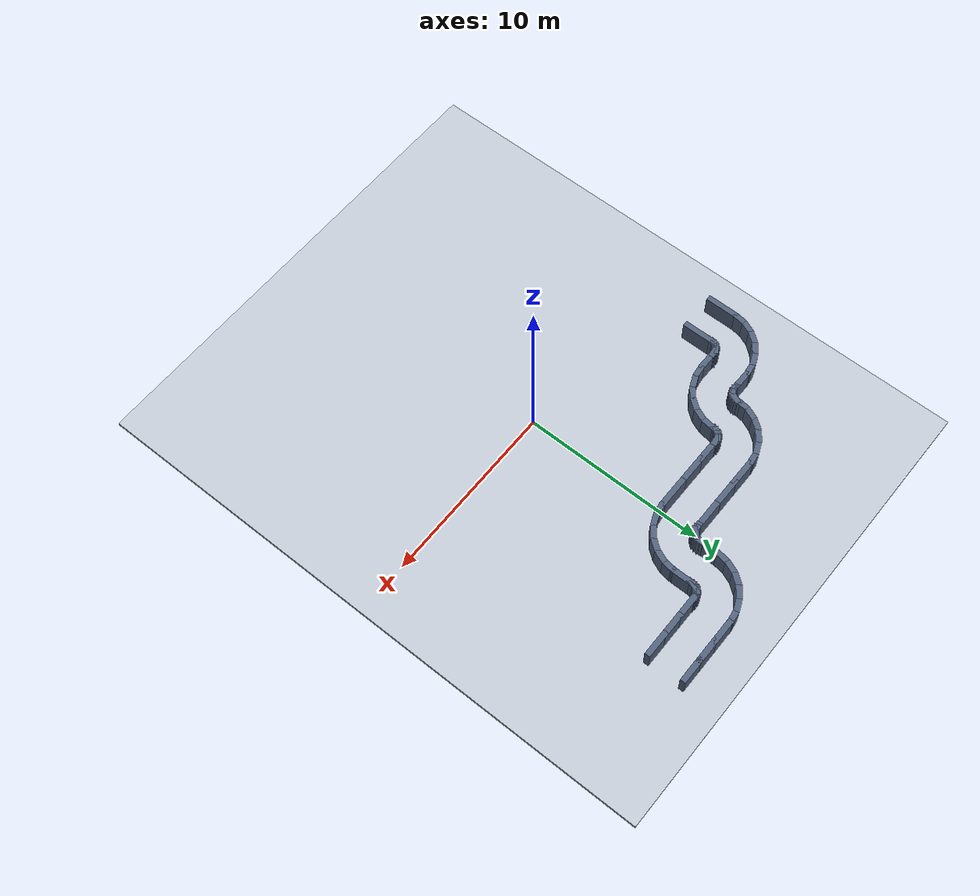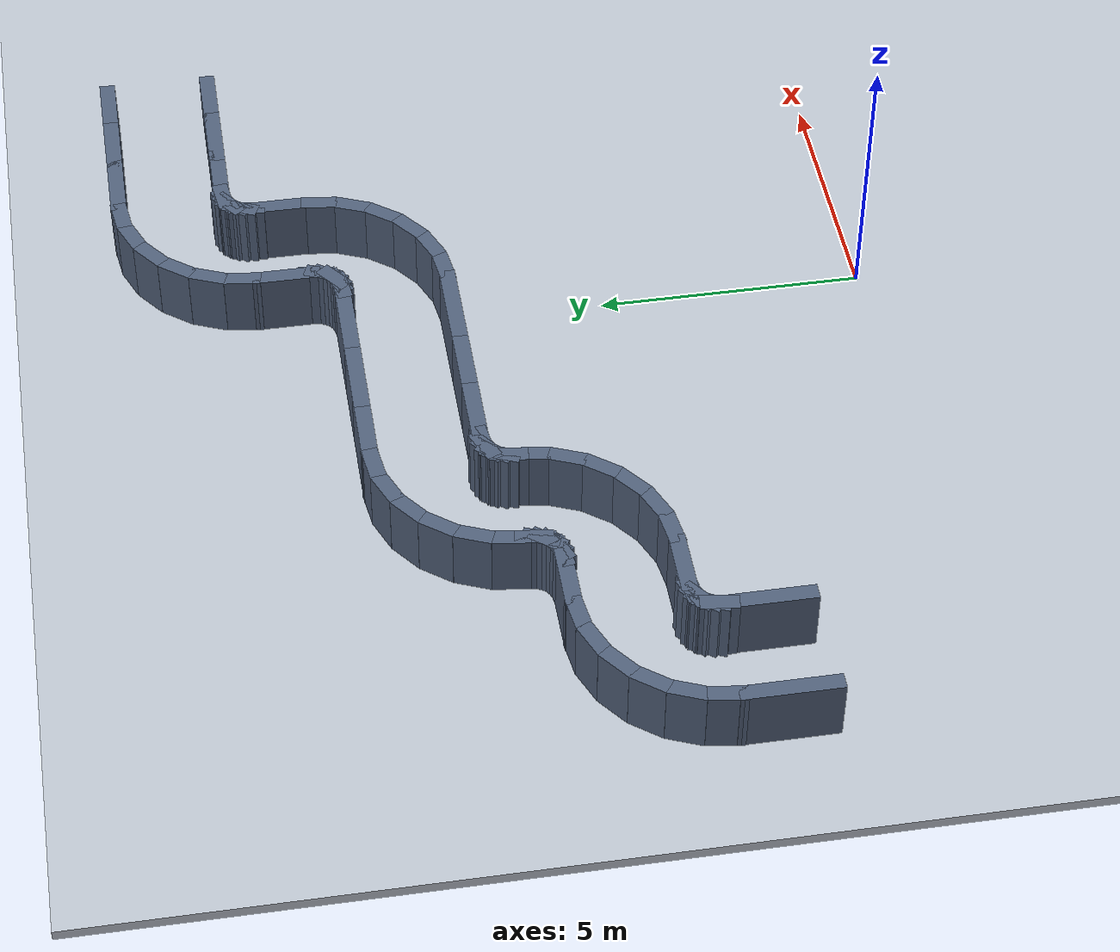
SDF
<sdf version="1.6">
 <world name="merged_maze">
  <model name="ground_plane">
   <static>true</static>
   <pose>0 0 -0.1 0 0 0</pose>
   <link name="link">
    <collision name="collision">
     <geometry><box><size>25.9198 32.2599 0.2</size></box></geometry>
     <surface><friction><ode><mu>1</mu><mu2>1</mu2></ode></friction></surface>
    </collision>
    <visual name="visual">
     <geometry><box><size>25.9198 32.2599 0.2</size></box></geometry>
     <material><ambient>0.75 0.78 0.82 1</ambient><diffuse>0.75 0.78 0.82 1</diffuse></material>
    </visual>
   </link>
  </model>
  <model name="maze_4_U">
   <static>true</static>
   <link name="w00">
    <pose>5.917 11.9701 0.6 0 0 3.1416</pose>
    <collision name="collision"><geometry><box><size>1.467 0.3 1.2</size></box></geometry></collision>
    <visual name="visual">
     <geometry><box><size>1.467 0.3 1.2</size></box></geometry>
     <material><ambient>0.32 0.38 0.48 1</ambient><diffuse>0.32 0.38 0.48 1</diffuse></material>
    </visual>
   </link>
   <link name="w01">
    <pose>5.917 13.9701 0.6 0 0 3.1416</pose>
    <collision name="collision"><geometry><box><size>1.467 0.3 1.2</size></box></geometry></collision>
    <visual name="visual">
     <geometry><box><size>1.467 0.3 1.2</size></box></geometry>
     <material><ambient>0.32 0.38 0.48 1</ambient><diffuse>0.32 0.38 0.48 1</diffuse></material>
    </visual>
   </link>
   <link name="w02">
    <pose>4.75 11.9701 0.6 0 0 3.1416</pose>
    <collision name="collision"><geometry><box><size>1.467 0.3 1.2</size></box></geometry></collision>
    <visual name="visual">
     <geometry><box><size>1.467 0.3 1.2</size></box></geometry>
     <material><ambient>0.32 0.38 0.48 1</ambient><diffuse>0.32 0.38 0.48 1</diffuse></material>
    </visual>
   </link>
   <link name="w03">
    <pose>4.75 13.9701 0.6 0 0 3.1416</pose>
    <collision name="collision"><geometry><box><size>1.467 0.3 1.2</size></box></geometry></collision>
    <visual name="visual">
     <geometry><box><size>1.467 0.3 1.2</size></box></geometry>
     <material><ambient>0.32 0.38 0.48 1</ambient><diffuse>0.32 0.38 0.48 1</diffuse></material>
    </visual>
   </link>
   <link name="w04">
    <pose>3.583 11.9701 0.6 0 0 3.1416</pose>
    <collision name="collision"><geometry><box><size>1.467 0.3 1.2</size></box></geometry></collision>
    <visual name="visual">
     <geometry><box><size>1.467 0.3 1.2</size></box></geometry>
     <material><ambient>0.32 0.38 0.48 1</ambient><diffuse>0.32 0.38 0.48 1</diffuse></material>
    </visual>
   </link>
   <link name="w05">
    <pose>3.583 13.9701 0.6 0 0 3.1416</pose>
    <collision name="collision"><geometry><box><size>1.467 0.3 1.2</size></box></geometry></collision>
    <visual name="visual">
     <geometry><box><size>1.467 0.3 1.2</size></box></geometry>
     <material><ambient>0.32 0.38 0.48 1</ambient><diffuse>0.32 0.38 0.48 1</diffuse></material>
    </visual>
   </link>
   <link name="w06">
    <pose>2.936 11.9531 0.6 0 0 3.2725</pose>
    <collision name="collision"><geometry><box><size>0.692 0.3 1.2</size></box></geometry></collision>
    <visual name="visual">
     <geometry><box><size>0.692 0.3 1.2</size></box></geometry>
     <material><ambient>0.32 0.38 0.48 1</ambient><diffuse>0.32 0.38 0.48 1</diffuse></material>
    </visual>
   </link>
   <link name="w07">
    <pose>2.675 13.9361 0.6 0 0 3.2725</pose>
    <collision name="collision"><geometry><box><size>0.692 0.3 1.2</size></box></geometry></collision>
    <visual name="visual">
     <geometry><box><size>0.692 0.3 1.2</size></box></geometry>
     <material><ambient>0.32 0.38 0.48 1</ambient><diffuse>0.32 0.38 0.48 1</diffuse></material>
    </visual>
   </link>
   <link name="w08">
    <pose>2.814 11.9201 0.6 0 0 3.5343</pose>
    <collision name="collision"><geometry><box><size>0.692 0.3 1.2</size></box></geometry></collision>
    <visual name="visual">
     <geometry><box><size>0.692 0.3 1.2</size></box></geometry>
     <material><ambient>0.32 0.38 0.48 1</ambient><diffuse>0.32 0.38 0.48 1</diffuse></material>
    </visual>
   </link>
   <link name="w09">
    <pose>2.048 13.7681 0.6 0 0 3.5343</pose>
    <collision name="collision"><geometry><box><size>0.692 0.3 1.2</size></box></geometry></collision>
    <visual name="visual">
     <geometry><box><size>0.692 0.3 1.2</size></box></geometry>
     <material><ambient>0.32 0.38 0.48 1</ambient><diffuse>0.32 0.38 0.48 1</diffuse></material>
    </visual>
   </link>
   <link name="w10">
    <pose>2.703 11.8561 0.6 0 0 3.7961</pose>
    <collision name="collision"><geometry><box><size>0.692 0.3 1.2</size></box></geometry></collision>
    <visual name="visual">
     <geometry><box><size>0.692 0.3 1.2</size></box></geometry>
     <material><ambient>0.32 0.38 0.48 1</ambient><diffuse>0.32 0.38 0.48 1</diffuse></material>
    </visual>
   </link>
   <link name="w11">
    <pose>1.486 13.4431 0.6 0 0 3.7961</pose>
    <collision name="collision"><geometry><box><size>0.692 0.3 1.2</size></box></geometry></collision>
    <visual name="visual">
     <geometry><box><size>0.692 0.3 1.2</size></box></geometry>
     <material><ambient>0.32 0.38 0.48 1</ambient><diffuse>0.32 0.38 0.48 1</diffuse></material>
    </visual>
   </link>
   <link name="w12">
    <pose>2.614 11.7671 0.6 0 0 4.0579</pose>
    <collision name="collision"><geometry><box><size>0.692 0.3 1.2</size></box></geometry></collision>
    <visual name="visual">
     <geometry><box><size>0.692 0.3 1.2</size></box></geometry>
     <material><ambient>0.32 0.38 0.48 1</ambient><diffuse>0.32 0.38 0.48 1</diffuse></material>
    </visual>
   </link>
   <link name="w13">
    <pose>1.027 12.9841 0.6 0 0 4.0579</pose>
    <collision name="collision"><geometry><box><size>0.692 0.3 1.2</size></box></geometry></collision>
    <visual name="visual">
     <geometry><box><size>0.692 0.3 1.2</size></box></geometry>
     <material><ambient>0.32 0.38 0.48 1</ambient><diffuse>0.32 0.38 0.48 1</diffuse></material>
    </visual>
   </link>
   <link name="w14">
    <pose>2.55 11.6561 0.6 0 0 4.3197</pose>
    <collision name="collision"><geometry><box><size>0.692 0.3 1.2</size></box></geometry></collision>
    <visual name="visual">
     <geometry><box><size>0.692 0.3 1.2</size></box></geometry>
     <material><ambient>0.32 0.38 0.48 1</ambient><diffuse>0.32 0.38 0.48 1</diffuse></material>
    </visual>
   </link>
   <link name="w15">
    <pose>0.702 12.4221 0.6 0 0 4.3197</pose>
    <collision name="collision"><geometry><box><size>0.692 0.3 1.2</size></box></geometry></collision>
    <visual name="visual">
     <geometry><box><size>0.692 0.3 1.2</size></box></geometry>
     <material><ambient>0.32 0.38 0.48 1</ambient><diffuse>0.32 0.38 0.48 1</diffuse></material>
    </visual>
   </link>
   <link name="w16">
    <pose>2.517 11.5341 0.6 0 0 4.5815</pose>
    <collision name="collision"><geometry><box><size>0.692 0.3 1.2</size></box></geometry></collision>
    <visual name="visual">
     <geometry><box><size>0.692 0.3 1.2</size></box></geometry>
     <material><ambient>0.32 0.38 0.48 1</ambient><diffuse>0.32 0.38 0.48 1</diffuse></material>
    </visual>
   </link>
   <link name="w17">
    <pose>0.534 11.7951 0.6 0 0 4.5815</pose>
    <collision name="collision"><geometry><box><size>0.692 0.3 1.2</size></box></geometry></collision>
    <visual name="visual">
     <geometry><box><size>0.692 0.3 1.2</size></box></geometry>
     <material><ambient>0.32 0.38 0.48 1</ambient><diffuse>0.32 0.38 0.48 1</diffuse></material>
    </visual>
   </link>
   <link name="w18">
    <pose>2.5 10.9701 0.6 0 0 4.7124</pose>
    <collision name="collision"><geometry><box><size>1.3 0.3 1.2</size></box></geometry></collision>
    <visual name="visual">
     <geometry><box><size>1.3 0.3 1.2</size></box></geometry>
     <material><ambient>0.32 0.38 0.48 1</ambient><diffuse>0.32 0.38 0.48 1</diffuse></material>
    </visual>
   </link>
   <link name="w19">
    <pose>0.5 10.9701 0.6 0 0 4.7124</pose>
    <collision name="collision"><geometry><box><size>1.3 0.3 1.2</size></box></geometry></collision>
    <visual name="visual">
     <geometry><box><size>1.3 0.3 1.2</size></box></geometry>
     <material><ambient>0.32 0.38 0.48 1</ambient><diffuse>0.32 0.38 0.48 1</diffuse></material>
    </visual>
   </link>
   <link name="w20">
    <pose>2.466 10.1451 0.6 0 0 4.5815</pose>
    <collision name="collision"><geometry><box><size>0.692 0.3 1.2</size></box></geometry></collision>
    <visual name="visual">
     <geometry><box><size>0.692 0.3 1.2</size></box></geometry>
     <material><ambient>0.32 0.38 0.48 1</ambient><diffuse>0.32 0.38 0.48 1</diffuse></material>
    </visual>
   </link>
   <link name="w21">
    <pose>0.483 10.4061 0.6 0 0 4.5815</pose>
    <collision name="collision"><geometry><box><size>0.692 0.3 1.2</size></box></geometry></collision>
    <visual name="visual">
     <geometry><box><size>0.692 0.3 1.2</size></box></geometry>
     <material><ambient>0.32 0.38 0.48 1</ambient><diffuse>0.32 0.38 0.48 1</diffuse></material>
    </visual>
   </link>
   <link name="w22">
    <pose>2.298 9.5181 0.6 0 0 4.3197</pose>
    <collision name="collision"><geometry><box><size>0.692 0.3 1.2</size></box></geometry></collision>
    <visual name="visual">
     <geometry><box><size>0.692 0.3 1.2</size></box></geometry>
     <material><ambient>0.32 0.38 0.48 1</ambient><diffuse>0.32 0.38 0.48 1</diffuse></material>
    </visual>
   </link>
   <link name="w23">
    <pose>0.45 10.2841 0.6 0 0 4.3197</pose>
    <collision name="collision"><geometry><box><size>0.692 0.3 1.2</size></box></geometry></collision>
    <visual name="visual">
     <geometry><box><size>0.692 0.3 1.2</size></box></geometry>
     <material><ambient>0.32 0.38 0.48 1</ambient><diffuse>0.32 0.38 0.48 1</diffuse></material>
    </visual>
   </link>
   <link name="w24">
    <pose>1.973 8.9561 0.6 0 0 4.0579</pose>
    <collision name="collision"><geometry><box><size>0.692 0.3 1.2</size></box></geometry></collision>
    <visual name="visual">
     <geometry><box><size>0.692 0.3 1.2</size></box></geometry>
     <material><ambient>0.32 0.38 0.48 1</ambient><diffuse>0.32 0.38 0.48 1</diffuse></material>
    </visual>
   </link>
   <link name="w25">
    <pose>0.386 10.1731 0.6 0 0 4.0579</pose>
    <collision name="collision"><geometry><box><size>0.692 0.3 1.2</size></box></geometry></collision>
    <visual name="visual">
     <geometry><box><size>0.692 0.3 1.2</size></box></geometry>
     <material><ambient>0.32 0.38 0.48 1</ambient><diffuse>0.32 0.38 0.48 1</diffuse></material>
    </visual>
   </link>
   <link name="w26">
    <pose>1.514 8.4971 0.6 0 0 3.7961</pose>
    <collision name="collision"><geometry><box><size>0.692 0.3 1.2</size></box></geometry></collision>
    <visual name="visual">
     <geometry><box><size>0.692 0.3 1.2</size></box></geometry>
     <material><ambient>0.32 0.38 0.48 1</ambient><diffuse>0.32 0.38 0.48 1</diffuse></material>
    </visual>
   </link>
   <link name="w27">
    <pose>0.297 10.0841 0.6 0 0 3.7961</pose>
    <collision name="collision"><geometry><box><size>0.692 0.3 1.2</size></box></geometry></collision>
    <visual name="visual">
     <geometry><box><size>0.692 0.3 1.2</size></box></geometry>
     <material><ambient>0.32 0.38 0.48 1</ambient><diffuse>0.32 0.38 0.48 1</diffuse></material>
    </visual>
   </link>
   <link name="w28">
    <pose>0.952 8.1721 0.6 0 0 3.5343</pose>
    <collision name="collision"><geometry><box><size>0.692 0.3 1.2</size></box></geometry></collision>
    <visual name="visual">
     <geometry><box><size>0.692 0.3 1.2</size></box></geometry>
     <material><ambient>0.32 0.38 0.48 1</ambient><diffuse>0.32 0.38 0.48 1</diffuse></material>
    </visual>
   </link>
   <link name="w29">
    <pose>0.186 10.0201 0.6 0 0 3.5343</pose>
    <collision name="collision"><geometry><box><size>0.692 0.3 1.2</size></box></geometry></collision>
    <visual name="visual">
     <geometry><box><size>0.692 0.3 1.2</size></box></geometry>
     <material><ambient>0.32 0.38 0.48 1</ambient><diffuse>0.32 0.38 0.48 1</diffuse></material>
    </visual>
   </link>
   <link name="w30">
    <pose>0.325 8.0041 0.6 0 0 3.2725</pose>
    <collision name="collision"><geometry><box><size>0.692 0.3 1.2</size></box></geometry></collision>
    <visual name="visual">
     <geometry><box><size>0.692 0.3 1.2</size></box></geometry>
     <material><ambient>0.32 0.38 0.48 1</ambient><diffuse>0.32 0.38 0.48 1</diffuse></material>
    </visual>
   </link>
   <link name="w31">
    <pose>0.064 9.9871 0.6 0 0 3.2725</pose>
    <collision name="collision"><geometry><box><size>0.692 0.3 1.2</size></box></geometry></collision>
    <visual name="visual">
     <geometry><box><size>0.692 0.3 1.2</size></box></geometry>
     <material><ambient>0.32 0.38 0.48 1</ambient><diffuse>0.32 0.38 0.48 1</diffuse></material>
    </visual>
   </link>
   <link name="w32">
    <pose>-0.75 7.9701 0.6 0 0 3.1416</pose>
    <collision name="collision"><geometry><box><size>1.8 0.3 1.2</size></box></geometry></collision>
    <visual name="visual">
     <geometry><box><size>1.8 0.3 1.2</size></box></geometry>
     <material><ambient>0.32 0.38 0.48 1</ambient><diffuse>0.32 0.38 0.48 1</diffuse></material>
    </visual>
   </link>
   <link name="w33">
    <pose>-0.75 9.9701 0.6 0 0 3.1416</pose>
    <collision name="collision"><geometry><box><size>1.8 0.3 1.2</size></box></geometry></collision>
    <visual name="visual">
     <geometry><box><size>1.8 0.3 1.2</size></box></geometry>
     <material><ambient>0.32 0.38 0.48 1</ambient><diffuse>0.32 0.38 0.48 1</diffuse></material>
    </visual>
   </link>
  </model>
  <model name="maze_5_Z">
   <static>true</static>
   <link name="w00">
    <pose>-2.425 7.9701 0.6 0 0 3.1416</pose>
    <collision name="collision"><geometry><box><size>1.55 0.3 1.2</size></box></geometry></collision>
    <visual name="visual">
     <geometry><box><size>1.55 0.3 1.2</size></box></geometry>
     <material><ambient>0.32 0.38 0.48 1</ambient><diffuse>0.32 0.38 0.48 1</diffuse></material>
    </visual>
   </link>
   <link name="w01">
    <pose>-2.425 9.9701 0.6 0 0 3.1416</pose>
    <collision name="collision"><geometry><box><size>1.55 0.3 1.2</size></box></geometry></collision>
    <visual name="visual">
     <geometry><box><size>1.55 0.3 1.2</size></box></geometry>
     <material><ambient>0.32 0.38 0.48 1</ambient><diffuse>0.32 0.38 0.48 1</diffuse></material>
    </visual>
   </link>
   <link name="w02">
    <pose>-3.675 7.9701 0.6 0 0 3.1416</pose>
    <collision name="collision"><geometry><box><size>1.55 0.3 1.2</size></box></geometry></collision>
    <visual name="visual">
     <geometry><box><size>1.55 0.3 1.2</size></box></geometry>
     <material><ambient>0.32 0.38 0.48 1</ambient><diffuse>0.32 0.38 0.48 1</diffuse></material>
    </visual>
   </link>
   <link name="w03">
    <pose>-3.675 9.9701 0.6 0 0 3.1416</pose>
    <collision name="collision"><geometry><box><size>1.55 0.3 1.2</size></box></geometry></collision>
    <visual name="visual">
     <geometry><box><size>1.55 0.3 1.2</size></box></geometry>
     <material><ambient>0.32 0.38 0.48 1</ambient><diffuse>0.32 0.38 0.48 1</diffuse></material>
    </visual>
   </link>
   <link name="w04">
    <pose>-4.364 7.9531 0.6 0 0 3.2725</pose>
    <collision name="collision"><geometry><box><size>0.692 0.3 1.2</size></box></geometry></collision>
    <visual name="visual">
     <geometry><box><size>0.692 0.3 1.2</size></box></geometry>
     <material><ambient>0.32 0.38 0.48 1</ambient><diffuse>0.32 0.38 0.48 1</diffuse></material>
    </visual>
   </link>
   <link name="w05">
    <pose>-4.625 9.9361 0.6 0 0 3.2725</pose>
    <collision name="collision"><geometry><box><size>0.692 0.3 1.2</size></box></geometry></collision>
    <visual name="visual">
     <geometry><box><size>0.692 0.3 1.2</size></box></geometry>
     <material><ambient>0.32 0.38 0.48 1</ambient><diffuse>0.32 0.38 0.48 1</diffuse></material>
    </visual>
   </link>
   <link name="w06">
    <pose>-4.486 7.9201 0.6 0 0 3.5343</pose>
    <collision name="collision"><geometry><box><size>0.692 0.3 1.2</size></box></geometry></collision>
    <visual name="visual">
     <geometry><box><size>0.692 0.3 1.2</size></box></geometry>
     <material><ambient>0.32 0.38 0.48 1</ambient><diffuse>0.32 0.38 0.48 1</diffuse></material>
    </visual>
   </link>
   <link name="w07">
    <pose>-5.252 9.7681 0.6 0 0 3.5343</pose>
    <collision name="collision"><geometry><box><size>0.692 0.3 1.2</size></box></geometry></collision>
    <visual name="visual">
     <geometry><box><size>0.692 0.3 1.2</size></box></geometry>
     <material><ambient>0.32 0.38 0.48 1</ambient><diffuse>0.32 0.38 0.48 1</diffuse></material>
    </visual>
   </link>
   <link name="w08">
    <pose>-4.597 7.8561 0.6 0 0 3.7961</pose>
    <collision name="collision"><geometry><box><size>0.692 0.3 1.2</size></box></geometry></collision>
    <visual name="visual">
     <geometry><box><size>0.692 0.3 1.2</size></box></geometry>
     <material><ambient>0.32 0.38 0.48 1</ambient><diffuse>0.32 0.38 0.48 1</diffuse></material>
    </visual>
   </link>
   <link name="w09">
    <pose>-5.814 9.4431 0.6 0 0 3.7961</pose>
    <collision name="collision"><geometry><box><size>0.692 0.3 1.2</size></box></geometry></collision>
    <visual name="visual">
     <geometry><box><size>0.692 0.3 1.2</size></box></geometry>
     <material><ambient>0.32 0.38 0.48 1</ambient><diffuse>0.32 0.38 0.48 1</diffuse></material>
    </visual>
   </link>
   <link name="w10">
    <pose>-4.686 7.7671 0.6 0 0 4.0579</pose>
    <collision name="collision"><geometry><box><size>0.692 0.3 1.2</size></box></geometry></collision>
    <visual name="visual">
     <geometry><box><size>0.692 0.3 1.2</size></box></geometry>
     <material><ambient>0.32 0.38 0.48 1</ambient><diffuse>0.32 0.38 0.48 1</diffuse></material>
    </visual>
   </link>
   <link name="w11">
    <pose>-6.273 8.9841 0.6 0 0 4.0579</pose>
    <collision name="collision"><geometry><box><size>0.692 0.3 1.2</size></box></geometry></collision>
    <visual name="visual">
     <geometry><box><size>0.692 0.3 1.2</size></box></geometry>
     <material><ambient>0.32 0.38 0.48 1</ambient><diffuse>0.32 0.38 0.48 1</diffuse></material>
    </visual>
   </link>
   <link name="w12">
    <pose>-4.75 7.6561 0.6 0 0 4.3197</pose>
    <collision name="collision"><geometry><box><size>0.692 0.3 1.2</size></box></geometry></collision>
    <visual name="visual">
     <geometry><box><size>0.692 0.3 1.2</size></box></geometry>
     <material><ambient>0.32 0.38 0.48 1</ambient><diffuse>0.32 0.38 0.48 1</diffuse></material>
    </visual>
   </link>
   <link name="w13">
    <pose>-6.598 8.4221 0.6 0 0 4.3197</pose>
    <collision name="collision"><geometry><box><size>0.692 0.3 1.2</size></box></geometry></collision>
    <visual name="visual">
     <geometry><box><size>0.692 0.3 1.2</size></box></geometry>
     <material><ambient>0.32 0.38 0.48 1</ambient><diffuse>0.32 0.38 0.48 1</diffuse></material>
    </visual>
   </link>
   <link name="w14">
    <pose>-4.783 7.5341 0.6 0 0 4.5815</pose>
    <collision name="collision"><geometry><box><size>0.692 0.3 1.2</size></box></geometry></collision>
    <visual name="visual">
     <geometry><box><size>0.692 0.3 1.2</size></box></geometry>
     <material><ambient>0.32 0.38 0.48 1</ambient><diffuse>0.32 0.38 0.48 1</diffuse></material>
    </visual>
   </link>
   <link name="w15">
    <pose>-6.766 7.7951 0.6 0 0 4.5815</pose>
    <collision name="collision"><geometry><box><size>0.692 0.3 1.2</size></box></geometry></collision>
    <visual name="visual">
     <geometry><box><size>0.692 0.3 1.2</size></box></geometry>
     <material><ambient>0.32 0.38 0.48 1</ambient><diffuse>0.32 0.38 0.48 1</diffuse></material>
    </visual>
   </link>
   <link name="w16">
    <pose>-4.834 7.1451 0.6 0 0 4.5815</pose>
    <collision name="collision"><geometry><box><size>0.692 0.3 1.2</size></box></geometry></collision>
    <visual name="visual">
     <geometry><box><size>0.692 0.3 1.2</size></box></geometry>
     <material><ambient>0.32 0.38 0.48 1</ambient><diffuse>0.32 0.38 0.48 1</diffuse></material>
    </visual>
   </link>
   <link name="w17">
    <pose>-6.817 7.4061 0.6 0 0 4.5815</pose>
    <collision name="collision"><geometry><box><size>0.692 0.3 1.2</size></box></geometry></collision>
    <visual name="visual">
     <geometry><box><size>0.692 0.3 1.2</size></box></geometry>
     <material><ambient>0.32 0.38 0.48 1</ambient><diffuse>0.32 0.38 0.48 1</diffuse></material>
    </visual>
   </link>
   <link name="w18">
    <pose>-5.002 6.5181 0.6 0 0 4.3197</pose>
    <collision name="collision"><geometry><box><size>0.692 0.3 1.2</size></box></geometry></collision>
    <visual name="visual">
     <geometry><box><size>0.692 0.3 1.2</size></box></geometry>
     <material><ambient>0.32 0.38 0.48 1</ambient><diffuse>0.32 0.38 0.48 1</diffuse></material>
    </visual>
   </link>
   <link name="w19">
    <pose>-6.85 7.2841 0.6 0 0 4.3197</pose>
    <collision name="collision"><geometry><box><size>0.692 0.3 1.2</size></box></geometry></collision>
    <visual name="visual">
     <geometry><box><size>0.692 0.3 1.2</size></box></geometry>
     <material><ambient>0.32 0.38 0.48 1</ambient><diffuse>0.32 0.38 0.48 1</diffuse></material>
    </visual>
   </link>
   <link name="w20">
    <pose>-5.327 5.9561 0.6 0 0 4.0579</pose>
    <collision name="collision"><geometry><box><size>0.692 0.3 1.2</size></box></geometry></collision>
    <visual name="visual">
     <geometry><box><size>0.692 0.3 1.2</size></box></geometry>
     <material><ambient>0.32 0.38 0.48 1</ambient><diffuse>0.32 0.38 0.48 1</diffuse></material>
    </visual>
   </link>
   <link name="w21">
    <pose>-6.914 7.1731 0.6 0 0 4.0579</pose>
    <collision name="collision"><geometry><box><size>0.692 0.3 1.2</size></box></geometry></collision>
    <visual name="visual">
     <geometry><box><size>0.692 0.3 1.2</size></box></geometry>
     <material><ambient>0.32 0.38 0.48 1</ambient><diffuse>0.32 0.38 0.48 1</diffuse></material>
    </visual>
   </link>
   <link name="w22">
    <pose>-5.786 5.4971 0.6 0 0 3.7961</pose>
    <collision name="collision"><geometry><box><size>0.692 0.3 1.2</size></box></geometry></collision>
    <visual name="visual">
     <geometry><box><size>0.692 0.3 1.2</size></box></geometry>
     <material><ambient>0.32 0.38 0.48 1</ambient><diffuse>0.32 0.38 0.48 1</diffuse></material>
    </visual>
   </link>
   <link name="w23">
    <pose>-7.003 7.0841 0.6 0 0 3.7961</pose>
    <collision name="collision"><geometry><box><size>0.692 0.3 1.2</size></box></geometry></collision>
    <visual name="visual">
     <geometry><box><size>0.692 0.3 1.2</size></box></geometry>
     <material><ambient>0.32 0.38 0.48 1</ambient><diffuse>0.32 0.38 0.48 1</diffuse></material>
    </visual>
   </link>
   <link name="w24">
    <pose>-6.348 5.1721 0.6 0 0 3.5343</pose>
    <collision name="collision"><geometry><box><size>0.692 0.3 1.2</size></box></geometry></collision>
    <visual name="visual">
     <geometry><box><size>0.692 0.3 1.2</size></box></geometry>
     <material><ambient>0.32 0.38 0.48 1</ambient><diffuse>0.32 0.38 0.48 1</diffuse></material>
    </visual>
   </link>
   <link name="w25">
    <pose>-7.114 7.0201 0.6 0 0 3.5343</pose>
    <collision name="collision"><geometry><box><size>0.692 0.3 1.2</size></box></geometry></collision>
    <visual name="visual">
     <geometry><box><size>0.692 0.3 1.2</size></box></geometry>
     <material><ambient>0.32 0.38 0.48 1</ambient><diffuse>0.32 0.38 0.48 1</diffuse></material>
    </visual>
   </link>
   <link name="w26">
    <pose>-6.975 5.0041 0.6 0 0 3.2725</pose>
    <collision name="collision"><geometry><box><size>0.692 0.3 1.2</size></box></geometry></collision>
    <visual name="visual">
     <geometry><box><size>0.692 0.3 1.2</size></box></geometry>
     <material><ambient>0.32 0.38 0.48 1</ambient><diffuse>0.32 0.38 0.48 1</diffuse></material>
    </visual>
   </link>
   <link name="w27">
    <pose>-7.236 6.9871 0.6 0 0 3.2725</pose>
    <collision name="collision"><geometry><box><size>0.692 0.3 1.2</size></box></geometry></collision>
    <visual name="visual">
     <geometry><box><size>0.692 0.3 1.2</size></box></geometry>
     <material><ambient>0.32 0.38 0.48 1</ambient><diffuse>0.32 0.38 0.48 1</diffuse></material>
    </visual>
   </link>
   <link name="w28">
    <pose>-7.8 4.9701 0.6 0 0 3.1416</pose>
    <collision name="collision"><geometry><box><size>1.3 0.3 1.2</size></box></geometry></collision>
    <visual name="visual">
     <geometry><box><size>1.3 0.3 1.2</size></box></geometry>
     <material><ambient>0.32 0.38 0.48 1</ambient><diffuse>0.32 0.38 0.48 1</diffuse></material>
    </visual>
   </link>
   <link name="w29">
    <pose>-7.8 6.9701 0.6 0 0 3.1416</pose>
    <collision name="collision"><geometry><box><size>1.3 0.3 1.2</size></box></geometry></collision>
    <visual name="visual">
     <geometry><box><size>1.3 0.3 1.2</size></box></geometry>
     <material><ambient>0.32 0.38 0.48 1</ambient><diffuse>0.32 0.38 0.48 1</diffuse></material>
    </visual>
   </link>
   <link name="w30">
    <pose>-8.364 4.9531 0.6 0 0 3.2725</pose>
    <collision name="collision"><geometry><box><size>0.692 0.3 1.2</size></box></geometry></collision>
    <visual name="visual">
     <geometry><box><size>0.692 0.3 1.2</size></box></geometry>
     <material><ambient>0.32 0.38 0.48 1</ambient><diffuse>0.32 0.38 0.48 1</diffuse></material>
    </visual>
   </link>
   <link name="w31">
    <pose>-8.625 6.9361 0.6 0 0 3.2725</pose>
    <collision name="collision"><geometry><box><size>0.692 0.3 1.2</size></box></geometry></collision>
    <visual name="visual">
     <geometry><box><size>0.692 0.3 1.2</size></box></geometry>
     <material><ambient>0.32 0.38 0.48 1</ambient><diffuse>0.32 0.38 0.48 1</diffuse></material>
    </visual>
   </link>
   <link name="w32">
    <pose>-8.486 4.9201 0.6 0 0 3.5343</pose>
    <collision name="collision"><geometry><box><size>0.692 0.3 1.2</size></box></geometry></collision>
    <visual name="visual">
     <geometry><box><size>0.692 0.3 1.2</size></box></geometry>
     <material><ambient>0.32 0.38 0.48 1</ambient><diffuse>0.32 0.38 0.48 1</diffuse></material>
    </visual>
   </link>
   <link name="w33">
    <pose>-9.252 6.7681 0.6 0 0 3.5343</pose>
    <collision name="collision"><geometry><box><size>0.692 0.3 1.2</size></box></geometry></collision>
    <visual name="visual">
     <geometry><box><size>0.692 0.3 1.2</size></box></geometry>
     <material><ambient>0.32 0.38 0.48 1</ambient><diffuse>0.32 0.38 0.48 1</diffuse></material>
    </visual>
   </link>
   <link name="w34">
    <pose>-8.597 4.8561 0.6 0 0 3.7961</pose>
    <collision name="collision"><geometry><box><size>0.692 0.3 1.2</size></box></geometry></collision>
    <visual name="visual">
     <geometry><box><size>0.692 0.3 1.2</size></box></geometry>
     <material><ambient>0.32 0.38 0.48 1</ambient><diffuse>0.32 0.38 0.48 1</diffuse></material>
    </visual>
   </link>
   <link name="w35">
    <pose>-9.814 6.4431 0.6 0 0 3.7961</pose>
    <collision name="collision"><geometry><box><size>0.692 0.3 1.2</size></box></geometry></collision>
    <visual name="visual">
     <geometry><box><size>0.692 0.3 1.2</size></box></geometry>
     <material><ambient>0.32 0.38 0.48 1</ambient><diffuse>0.32 0.38 0.48 1</diffuse></material>
    </visual>
   </link>
   <link name="w36">
    <pose>-8.686 4.7671 0.6 0 0 4.0579</pose>
    <collision name="collision"><geometry><box><size>0.692 0.3 1.2</size></box></geometry></collision>
    <visual name="visual">
     <geometry><box><size>0.692 0.3 1.2</size></box></geometry>
     <material><ambient>0.32 0.38 0.48 1</ambient><diffuse>0.32 0.38 0.48 1</diffuse></material>
    </visual>
   </link>
   <link name="w37">
    <pose>-10.273 5.9841 0.6 0 0 4.0579</pose>
    <collision name="collision"><geometry><box><size>0.692 0.3 1.2</size></box></geometry></collision>
    <visual name="visual">
     <geometry><box><size>0.692 0.3 1.2</size></box></geometry>
     <material><ambient>0.32 0.38 0.48 1</ambient><diffuse>0.32 0.38 0.48 1</diffuse></material>
    </visual>
   </link>
   <link name="w38">
    <pose>-8.75 4.6561 0.6 0 0 4.3197</pose>
    <collision name="collision"><geometry><box><size>0.692 0.3 1.2</size></box></geometry></collision>
    <visual name="visual">
     <geometry><box><size>0.692 0.3 1.2</size></box></geometry>
     <material><ambient>0.32 0.38 0.48 1</ambient><diffuse>0.32 0.38 0.48 1</diffuse></material>
    </visual>
   </link>
   <link name="w39">
    <pose>-10.598 5.4221 0.6 0 0 4.3197</pose>
    <collision name="collision"><geometry><box><size>0.692 0.3 1.2</size></box></geometry></collision>
    <visual name="visual">
     <geometry><box><size>0.692 0.3 1.2</size></box></geometry>
     <material><ambient>0.32 0.38 0.48 1</ambient><diffuse>0.32 0.38 0.48 1</diffuse></material>
    </visual>
   </link>
   <link name="w40">
    <pose>-8.783 4.5341 0.6 0 0 4.5815</pose>
    <collision name="collision"><geometry><box><size>0.692 0.3 1.2</size></box></geometry></collision>
    <visual name="visual">
     <geometry><box><size>0.692 0.3 1.2</size></box></geometry>
     <material><ambient>0.32 0.38 0.48 1</ambient><diffuse>0.32 0.38 0.48 1</diffuse></material>
    </visual>
   </link>
   <link name="w41">
    <pose>-10.766 4.7951 0.6 0 0 4.5815</pose>
    <collision name="collision"><geometry><box><size>0.692 0.3 1.2</size></box></geometry></collision>
    <visual name="visual">
     <geometry><box><size>0.692 0.3 1.2</size></box></geometry>
     <material><ambient>0.32 0.38 0.48 1</ambient><diffuse>0.32 0.38 0.48 1</diffuse></material>
    </visual>
   </link>
   <link name="w42">
    <pose>-8.8 3.7201 0.6 0 0 4.7124</pose>
    <collision name="collision"><geometry><box><size>1.8 0.3 1.2</size></box></geometry></collision>
    <visual name="visual">
     <geometry><box><size>1.8 0.3 1.2</size></box></geometry>
     <material><ambient>0.32 0.38 0.48 1</ambient><diffuse>0.32 0.38 0.48 1</diffuse></material>
    </visual>
   </link>
   <link name="w43">
    <pose>-10.8 3.7201 0.6 0 0 4.7124</pose>
    <collision name="collision"><geometry><box><size>1.8 0.3 1.2</size></box></geometry></collision>
    <visual name="visual">
     <geometry><box><size>1.8 0.3 1.2</size></box></geometry>
     <material><ambient>0.32 0.38 0.48 1</ambient><diffuse>0.32 0.38 0.48 1</diffuse></material>
    </visual>
   </link>
  </model>
 </world>
</sdf>
